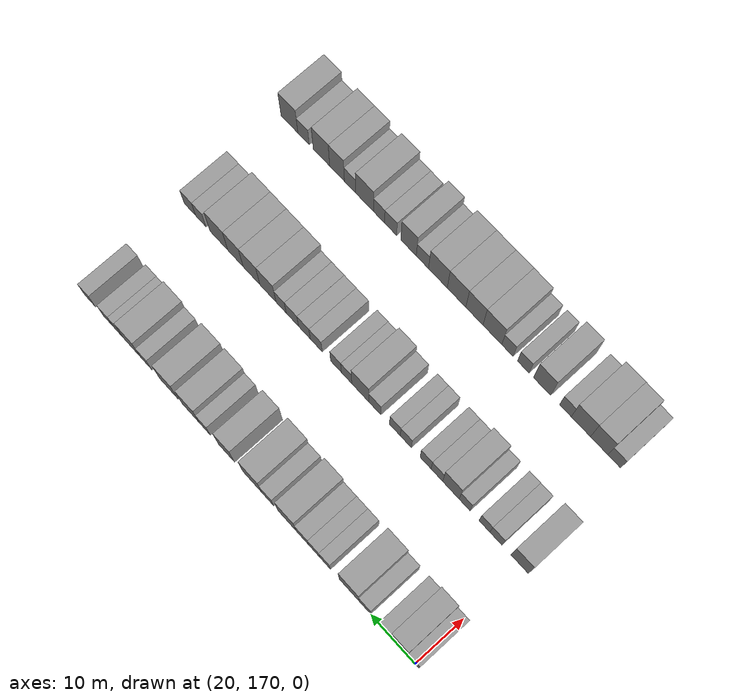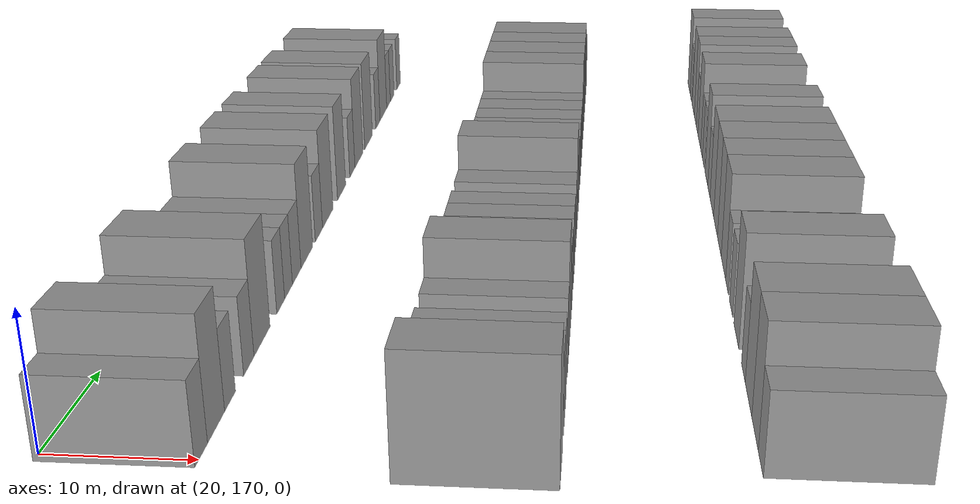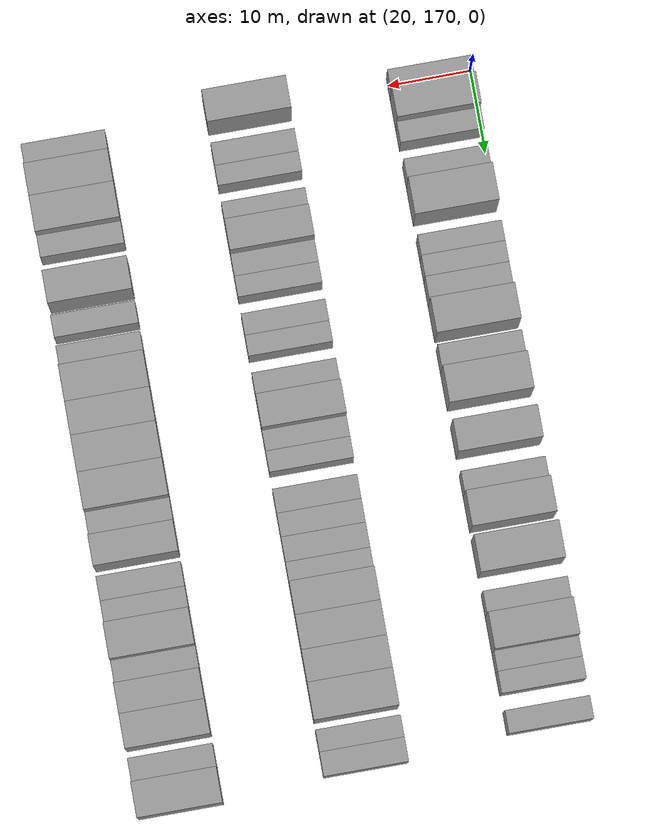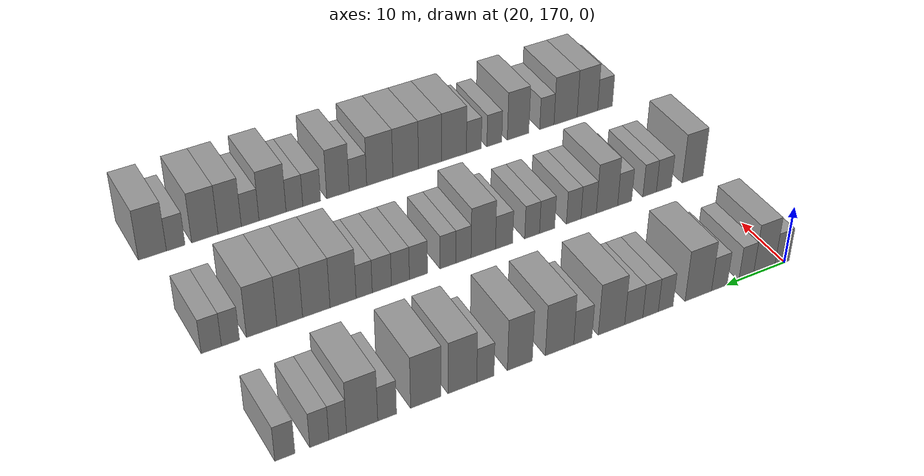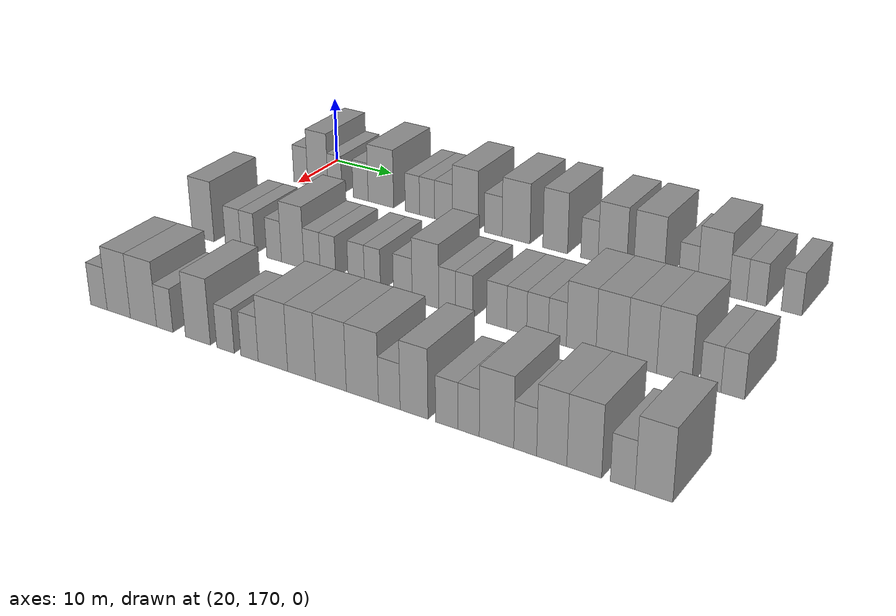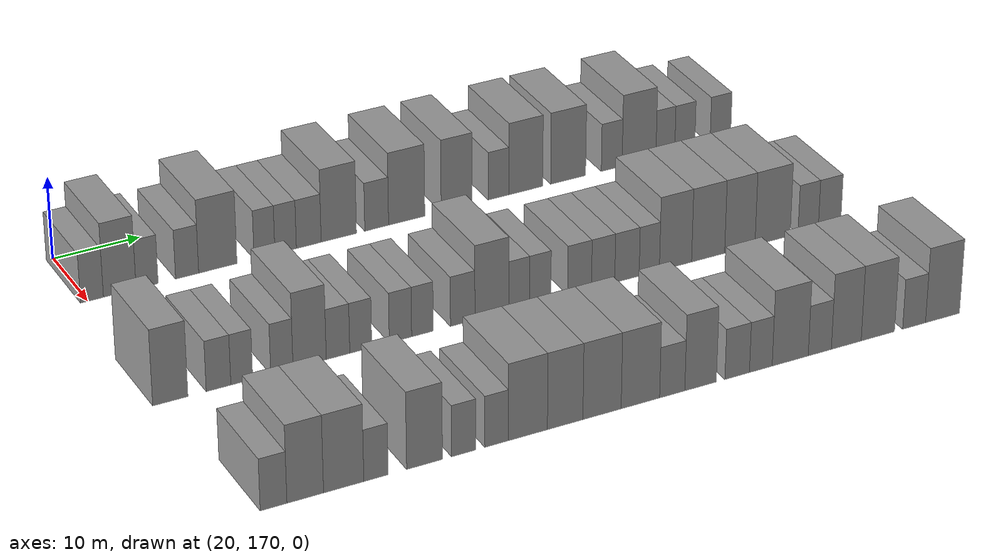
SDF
<sdf version="1.6">
 <world name="default">
  <model name="building_102">
   <static>1</static>
   <pose>25.0000 170.4860 0 0.000000 0.000000 0.000000</pose>
   <link name="link">
    <pose>0 0 3.00 0 0 0</pose>
    <collision name="collision"><geometry><box><size>10.0000 2.5908 6.0000</size></box></geometry></collision>
    <visual name="visual">
     <cast_shadows>0</cast_shadows>
     <geometry><box><size>10.0000 2.5908 6.0000</size></box></geometry>
     <material>
      <script>
       <uri>model://grey_wall/materials/scripts</uri>
       <uri>model://grey_wall/materials/textures</uri>
       <name>vrc/grey_wall</name>
      </script>
     </material>
    </visual>
   </link>
  </model>
  <model name="building_103">
   <static>1</static>
   <pose>25.0000 173.6419 0 0.000000 0.000000 0.000000</pose>
   <link name="link">
    <pose>0 0 4.50 0 0 0</pose>
    <collision name="collision"><geometry><box><size>10.0000 3.7210 9.0000</size></box></geometry></collision>
    <visual name="visual">
     <cast_shadows>0</cast_shadows>
     <geometry><box><size>10.0000 3.7210 9.0000</size></box></geometry>
     <material>
      <script>
       <uri>model://grey_wall/materials/scripts</uri>
       <uri>model://grey_wall/materials/textures</uri>
       <name>vrc/grey_wall</name>
      </script>
     </material>
    </visual>
   </link>
  </model>
  <model name="building_104">
   <static>1</static>
   <pose>25.0000 176.7685 0 0.000000 0.000000 0.000000</pose>
   <link name="link">
    <pose>0 0 3.00 0 0 0</pose>
    <collision name="collision"><geometry><box><size>10.0000 2.5322 6.0000</size></box></geometry></collision>
    <visual name="visual">
     <cast_shadows>0</cast_shadows>
     <geometry><box><size>10.0000 2.5322 6.0000</size></box></geometry>
     <material>
      <script>
       <uri>model://grey_wall/materials/scripts</uri>
       <uri>model://grey_wall/materials/textures</uri>
       <name>vrc/grey_wall</name>
      </script>
     </material>
    </visual>
   </link>
  </model>
  <model name="building_105">
   <static>1</static>
   <pose>25.0000 181.3725 0 0.000000 0.000000 0.000000</pose>
   <link name="link">
    <pose>0 0 3.00 0 0 0</pose>
    <collision name="collision"><geometry><box><size>10.0000 2.6758 6.0000</size></box></geometry></collision>
    <visual name="visual">
     <cast_shadows>0</cast_shadows>
     <geometry><box><size>10.0000 2.6758 6.0000</size></box></geometry>
     <material>
      <script>
       <uri>model://grey_wall/materials/scripts</uri>
       <uri>model://grey_wall/materials/textures</uri>
       <name>vrc/grey_wall</name>
      </script>
     </material>
    </visual>
   </link>
  </model>
  <model name="building_106">
   <static>1</static>
   <pose>25.0000 184.9443 0 0.000000 0.000000 0.000000</pose>
   <link name="link">
    <pose>0 0 4.50 0 0 0</pose>
    <collision name="collision"><geometry><box><size>10.0000 4.4678 9.0000</size></box></geometry></collision>
    <visual name="visual">
     <cast_shadows>0</cast_shadows>
     <geometry><box><size>10.0000 4.4678 9.0000</size></box></geometry>
     <material>
      <script>
       <uri>model://grey_wall/materials/scripts</uri>
       <uri>model://grey_wall/materials/textures</uri>
       <name>vrc/grey_wall</name>
      </script>
     </material>
    </visual>
   </link>
  </model>
  <model name="building_107">
   <static>1</static>
   <pose>25.0000 190.4029 0 0.000000 0.000000 0.000000</pose>
   <link name="link">
    <pose>0 0 3.00 0 0 0</pose>
    <collision name="collision"><geometry><box><size>10.0000 2.4494 6.0000</size></box></geometry></collision>
    <visual name="visual">
     <cast_shadows>0</cast_shadows>
     <geometry><box><size>10.0000 2.4494 6.0000</size></box></geometry>
     <material>
      <script>
       <uri>model://grey_wall/materials/scripts</uri>
       <uri>model://grey_wall/materials/textures</uri>
       <name>vrc/grey_wall</name>
      </script>
     </material>
    </visual>
   </link>
  </model>
  <model name="building_108">
   <static>1</static>
   <pose>25.0000 192.8982 0 0.000000 0.000000 0.000000</pose>
   <link name="link">
    <pose>0 0 3.00 0 0 0</pose>
    <collision name="collision"><geometry><box><size>10.0000 2.5413 6.0000</size></box></geometry></collision>
    <visual name="visual">
     <cast_shadows>0</cast_shadows>
     <geometry><box><size>10.0000 2.5413 6.0000</size></box></geometry>
     <material>
      <script>
       <uri>model://grey_wall/materials/scripts</uri>
       <uri>model://grey_wall/materials/textures</uri>
       <name>vrc/grey_wall</name>
      </script>
     </material>
    </visual>
   </link>
  </model>
  <model name="building_109">
   <static>1</static>
   <pose>25.0000 195.6448 0 0.000000 0.000000 0.000000</pose>
   <link name="link">
    <pose>0 0 3.00 0 0 0</pose>
    <collision name="collision"><geometry><box><size>10.0000 2.9519 6.0000</size></box></geometry></collision>
    <visual name="visual">
     <cast_shadows>0</cast_shadows>
     <geometry><box><size>10.0000 2.9519 6.0000</size></box></geometry>
     <material>
      <script>
       <uri>model://grey_wall/materials/scripts</uri>
       <uri>model://grey_wall/materials/textures</uri>
       <name>vrc/grey_wall</name>
      </script>
     </material>
    </visual>
   </link>
  </model>
  <model name="building_110">
   <static>1</static>
   <pose>25.0000 199.2382 0 0.000000 0.000000 0.000000</pose>
   <link name="link">
    <pose>0 0 4.50 0 0 0</pose>
    <collision name="collision"><geometry><box><size>10.0000 4.2349 9.0000</size></box></geometry></collision>
    <visual name="visual">
     <cast_shadows>0</cast_shadows>
     <geometry><box><size>10.0000 4.2349 9.0000</size></box></geometry>
     <material>
      <script>
       <uri>model://grey_wall/materials/scripts</uri>
       <uri>model://grey_wall/materials/textures</uri>
       <name>vrc/grey_wall</name>
      </script>
     </material>
    </visual>
   </link>
  </model>
  <model name="building_111">
   <static>1</static>
   <pose>25.0000 203.7957 0 0.000000 0.000000 0.000000</pose>
   <link name="link">
    <pose>0 0 3.00 0 0 0</pose>
    <collision name="collision"><geometry><box><size>10.0000 2.8800 6.0000</size></box></geometry></collision>
    <visual name="visual">
     <cast_shadows>0</cast_shadows>
     <geometry><box><size>10.0000 2.8800 6.0000</size></box></geometry>
     <material>
      <script>
       <uri>model://grey_wall/materials/scripts</uri>
       <uri>model://grey_wall/materials/textures</uri>
       <name>vrc/grey_wall</name>
      </script>
     </material>
    </visual>
   </link>
  </model>
  <model name="building_112">
   <static>1</static>
   <pose>25.0000 207.4443 0 0.000000 0.000000 0.000000</pose>
   <link name="link">
    <pose>0 0 4.50 0 0 0</pose>
    <collision name="collision"><geometry><box><size>10.0000 4.4173 9.0000</size></box></geometry></collision>
    <visual name="visual">
     <cast_shadows>0</cast_shadows>
     <geometry><box><size>10.0000 4.4173 9.0000</size></box></geometry>
     <material>
      <script>
       <uri>model://grey_wall/materials/scripts</uri>
       <uri>model://grey_wall/materials/textures</uri>
       <name>vrc/grey_wall</name>
      </script>
     </material>
    </visual>
   </link>
  </model>
  <model name="building_113">
   <static>1</static>
   <pose>25.0000 213.5589 0 0.000000 0.000000 0.000000</pose>
   <link name="link">
    <pose>0 0 4.50 0 0 0</pose>
    <collision name="collision"><geometry><box><size>10.0000 3.8119 9.0000</size></box></geometry></collision>
    <visual name="visual">
     <cast_shadows>0</cast_shadows>
     <geometry><box><size>10.0000 3.8119 9.0000</size></box></geometry>
     <material>
      <script>
       <uri>model://grey_wall/materials/scripts</uri>
       <uri>model://grey_wall/materials/textures</uri>
       <name>vrc/grey_wall</name>
      </script>
     </material>
    </visual>
   </link>
  </model>
  <model name="building_114">
   <static>1</static>
   <pose>25.0000 218.7580 0 0.000000 0.000000 0.000000</pose>
   <link name="link">
    <pose>0 0 3.00 0 0 0</pose>
    <collision name="collision"><geometry><box><size>10.0000 2.5863 6.0000</size></box></geometry></collision>
    <visual name="visual">
     <cast_shadows>0</cast_shadows>
     <geometry><box><size>10.0000 2.5863 6.0000</size></box></geometry>
     <material>
      <script>
       <uri>model://grey_wall/materials/scripts</uri>
       <uri>model://grey_wall/materials/textures</uri>
       <name>vrc/grey_wall</name>
      </script>
     </material>
    </visual>
   </link>
  </model>
  <model name="building_115">
   <static>1</static>
   <pose>25.0000 222.1692 0 0.000000 0.000000 0.000000</pose>
   <link name="link">
    <pose>0 0 4.50 0 0 0</pose>
    <collision name="collision"><geometry><box><size>10.0000 4.2362 9.0000</size></box></geometry></collision>
    <visual name="visual">
     <cast_shadows>0</cast_shadows>
     <geometry><box><size>10.0000 4.2362 9.0000</size></box></geometry>
     <material>
      <script>
       <uri>model://grey_wall/materials/scripts</uri>
       <uri>model://grey_wall/materials/textures</uri>
       <name>vrc/grey_wall</name>
      </script>
     </material>
    </visual>
   </link>
  </model>
  <model name="building_116">
   <static>1</static>
   <pose>25.0000 227.5014 0 0.000000 0.000000 0.000000</pose>
   <link name="link">
    <pose>0 0 4.50 0 0 0</pose>
    <collision name="collision"><geometry><box><size>10.0000 4.4281 9.0000</size></box></geometry></collision>
    <visual name="visual">
     <cast_shadows>0</cast_shadows>
     <geometry><box><size>10.0000 4.4281 9.0000</size></box></geometry>
     <material>
      <script>
       <uri>model://grey_wall/materials/scripts</uri>
       <uri>model://grey_wall/materials/textures</uri>
       <name>vrc/grey_wall</name>
      </script>
     </material>
    </visual>
   </link>
  </model>
  <model name="building_117">
   <static>1</static>
   <pose>25.0000 233.0473 0 0.000000 0.000000 0.000000</pose>
   <link name="link">
    <pose>0 0 3.00 0 0 0</pose>
    <collision name="collision"><geometry><box><size>10.0000 2.6637 6.0000</size></box></geometry></collision>
    <visual name="visual">
     <cast_shadows>0</cast_shadows>
     <geometry><box><size>10.0000 2.6637 6.0000</size></box></geometry>
     <material>
      <script>
       <uri>model://grey_wall/materials/scripts</uri>
       <uri>model://grey_wall/materials/textures</uri>
       <name>vrc/grey_wall</name>
      </script>
     </material>
    </visual>
   </link>
  </model>
  <model name="building_118">
   <static>1</static>
   <pose>25.0000 236.5592 0 0.000000 0.000000 0.000000</pose>
   <link name="link">
    <pose>0 0 4.50 0 0 0</pose>
    <collision name="collision"><geometry><box><size>10.0000 4.3601 9.0000</size></box></geometry></collision>
    <visual name="visual">
     <cast_shadows>0</cast_shadows>
     <geometry><box><size>10.0000 4.3601 9.0000</size></box></geometry>
     <material>
      <script>
       <uri>model://grey_wall/materials/scripts</uri>
       <uri>model://grey_wall/materials/textures</uri>
       <name>vrc/grey_wall</name>
      </script>
     </material>
    </visual>
   </link>
  </model>
  <model name="building_119">
   <static>1</static>
   <pose>25.0000 239.9588 0 0.000000 0.000000 0.000000</pose>
   <link name="link">
    <pose>0 0 3.00 0 0 0</pose>
    <collision name="collision"><geometry><box><size>10.0000 2.4390 6.0000</size></box></geometry></collision>
    <visual name="visual">
     <cast_shadows>0</cast_shadows>
     <geometry><box><size>10.0000 2.4390 6.0000</size></box></geometry>
     <material>
      <script>
       <uri>model://grey_wall/materials/scripts</uri>
       <uri>model://grey_wall/materials/textures</uri>
       <name>vrc/grey_wall</name>
      </script>
     </material>
    </visual>
   </link>
  </model>
  <model name="building_120">
   <static>1</static>
   <pose>25.0000 242.4833 0 0.000000 0.000000 0.000000</pose>
   <link name="link">
    <pose>0 0 3.00 0 0 0</pose>
    <collision name="collision"><geometry><box><size>10.0000 2.6099 6.0000</size></box></geometry></collision>
    <visual name="visual">
     <cast_shadows>0</cast_shadows>
     <geometry><box><size>10.0000 2.6099 6.0000</size></box></geometry>
     <material>
      <script>
       <uri>model://grey_wall/materials/scripts</uri>
       <uri>model://grey_wall/materials/textures</uri>
       <name>vrc/grey_wall</name>
      </script>
     </material>
    </visual>
   </link>
  </model>
  <model name="building_121">
   <static>1</static>
   <pose>25.0000 247.1419 0 0.000000 0.000000 0.000000</pose>
   <link name="link">
    <pose>0 0 3.00 0 0 0</pose>
    <collision name="collision"><geometry><box><size>10.0000 2.7074 6.0000</size></box></geometry></collision>
    <visual name="visual">
     <cast_shadows>0</cast_shadows>
     <geometry><box><size>10.0000 2.7074 6.0000</size></box></geometry>
     <material>
      <script>
       <uri>model://grey_wall/materials/scripts</uri>
       <uri>model://grey_wall/materials/textures</uri>
       <name>vrc/grey_wall</name>
      </script>
     </material>
    </visual>
   </link>
  </model>
  <model name="building_234">
   <static>1</static>
   <pose>47.0000 170.2331 0 0.000000 0.000000 0.000000</pose>
   <link name="link">
    <pose>0 0 4.50 0 0 0</pose>
    <collision name="collision"><geometry><box><size>10.0000 3.8517 9.0000</size></box></geometry></collision>
    <visual name="visual">
     <cast_shadows>0</cast_shadows>
     <geometry><box><size>10.0000 3.8517 9.0000</size></box></geometry>
     <material>
      <script>
       <uri>model://grey_wall/materials/scripts</uri>
       <uri>model://grey_wall/materials/textures</uri>
       <name>vrc/grey_wall</name>
      </script>
     </material>
    </visual>
   </link>
  </model>
  <model name="building_235">
   <static>1</static>
   <pose>47.0000 175.5202 0 0.000000 0.000000 0.000000</pose>
   <link name="link">
    <pose>0 0 3.00 0 0 0</pose>
    <collision name="collision"><geometry><box><size>10.0000 2.7224 6.0000</size></box></geometry></collision>
    <visual name="visual">
     <cast_shadows>0</cast_shadows>
     <geometry><box><size>10.0000 2.7224 6.0000</size></box></geometry>
     <material>
      <script>
       <uri>model://grey_wall/materials/scripts</uri>
       <uri>model://grey_wall/materials/textures</uri>
       <name>vrc/grey_wall</name>
      </script>
     </material>
    </visual>
   </link>
  </model>
  <model name="building_236">
   <static>1</static>
   <pose>47.0000 178.0982 0 0.000000 0.000000 0.000000</pose>
   <link name="link">
    <pose>0 0 3.00 0 0 0</pose>
    <collision name="collision"><geometry><box><size>10.0000 2.4335 6.0000</size></box></geometry></collision>
    <visual name="visual">
     <cast_shadows>0</cast_shadows>
     <geometry><box><size>10.0000 2.4335 6.0000</size></box></geometry>
     <material>
      <script>
       <uri>model://grey_wall/materials/scripts</uri>
       <uri>model://grey_wall/materials/textures</uri>
       <name>vrc/grey_wall</name>
      </script>
     </material>
    </visual>
   </link>
  </model>
  <model name="building_237">
   <static>1</static>
   <pose>47.0000 182.5622 0 0.000000 0.000000 0.000000</pose>
   <link name="link">
    <pose>0 0 3.00 0 0 0</pose>
    <collision name="collision"><geometry><box><size>10.0000 2.4946 6.0000</size></box></geometry></collision>
    <visual name="visual">
     <cast_shadows>0</cast_shadows>
     <geometry><box><size>10.0000 2.4946 6.0000</size></box></geometry>
     <material>
      <script>
       <uri>model://grey_wall/materials/scripts</uri>
       <uri>model://grey_wall/materials/textures</uri>
       <name>vrc/grey_wall</name>
      </script>
     </material>
    </visual>
   </link>
  </model>
  <model name="building_238">
   <static>1</static>
   <pose>47.0000 185.6844 0 0.000000 0.000000 0.000000</pose>
   <link name="link">
    <pose>0 0 4.50 0 0 0</pose>
    <collision name="collision"><geometry><box><size>10.0000 3.7497 9.0000</size></box></geometry></collision>
    <visual name="visual">
     <cast_shadows>0</cast_shadows>
     <geometry><box><size>10.0000 3.7497 9.0000</size></box></geometry>
     <material>
      <script>
       <uri>model://grey_wall/materials/scripts</uri>
       <uri>model://grey_wall/materials/textures</uri>
       <name>vrc/grey_wall</name>
      </script>
     </material>
    </visual>
   </link>
  </model>
  <model name="building_239">
   <static>1</static>
   <pose>47.0000 188.8957 0 0.000000 0.000000 0.000000</pose>
   <link name="link">
    <pose>0 0 3.00 0 0 0</pose>
    <collision name="collision"><geometry><box><size>10.0000 2.6728 6.0000</size></box></geometry></collision>
    <visual name="visual">
     <cast_shadows>0</cast_shadows>
     <geometry><box><size>10.0000 2.6728 6.0000</size></box></geometry>
     <material>
      <script>
       <uri>model://grey_wall/materials/scripts</uri>
       <uri>model://grey_wall/materials/textures</uri>
       <name>vrc/grey_wall</name>
      </script>
     </material>
    </visual>
   </link>
  </model>
  <model name="building_240">
   <static>1</static>
   <pose>47.0000 191.4880 0 0.000000 0.000000 0.000000</pose>
   <link name="link">
    <pose>0 0 3.00 0 0 0</pose>
    <collision name="collision"><geometry><box><size>10.0000 2.5119 6.0000</size></box></geometry></collision>
    <visual name="visual">
     <cast_shadows>0</cast_shadows>
     <geometry><box><size>10.0000 2.5119 6.0000</size></box></geometry>
     <material>
      <script>
       <uri>model://grey_wall/materials/scripts</uri>
       <uri>model://grey_wall/materials/textures</uri>
       <name>vrc/grey_wall</name>
      </script>
     </material>
    </visual>
   </link>
  </model>
  <model name="building_241">
   <static>1</static>
   <pose>47.0000 196.0348 0 0.000000 0.000000 0.000000</pose>
   <link name="link">
    <pose>0 0 3.00 0 0 0</pose>
    <collision name="collision"><geometry><box><size>10.0000 2.5816 6.0000</size></box></geometry></collision>
    <visual name="visual">
     <cast_shadows>0</cast_shadows>
     <geometry><box><size>10.0000 2.5816 6.0000</size></box></geometry>
     <material>
      <script>
       <uri>model://grey_wall/materials/scripts</uri>
       <uri>model://grey_wall/materials/textures</uri>
       <name>vrc/grey_wall</name>
      </script>
     </material>
    </visual>
   </link>
  </model>
  <model name="building_242">
   <static>1</static>
   <pose>47.0000 198.5786 0 0.000000 0.000000 0.000000</pose>
   <link name="link">
    <pose>0 0 3.00 0 0 0</pose>
    <collision name="collision"><geometry><box><size>10.0000 2.5060 6.0000</size></box></geometry></collision>
    <visual name="visual">
     <cast_shadows>0</cast_shadows>
     <geometry><box><size>10.0000 2.5060 6.0000</size></box></geometry>
     <material>
      <script>
       <uri>model://grey_wall/materials/scripts</uri>
       <uri>model://grey_wall/materials/textures</uri>
       <name>vrc/grey_wall</name>
      </script>
     </material>
    </visual>
   </link>
  </model>
  <model name="building_243">
   <static>1</static>
   <pose>47.0000 203.2638 0 0.000000 0.000000 0.000000</pose>
   <link name="link">
    <pose>0 0 3.00 0 0 0</pose>
    <collision name="collision"><geometry><box><size>10.0000 2.8644 6.0000</size></box></geometry></collision>
    <visual name="visual">
     <cast_shadows>0</cast_shadows>
     <geometry><box><size>10.0000 2.8644 6.0000</size></box></geometry>
     <material>
      <script>
       <uri>model://grey_wall/materials/scripts</uri>
       <uri>model://grey_wall/materials/textures</uri>
       <name>vrc/grey_wall</name>
      </script>
     </material>
    </visual>
   </link>
  </model>
  <model name="building_244">
   <static>1</static>
   <pose>47.0000 206.6940 0 0.000000 0.000000 0.000000</pose>
   <link name="link">
    <pose>0 0 4.50 0 0 0</pose>
    <collision name="collision"><geometry><box><size>10.0000 3.9961 9.0000</size></box></geometry></collision>
    <visual name="visual">
     <cast_shadows>0</cast_shadows>
     <geometry><box><size>10.0000 3.9961 9.0000</size></box></geometry>
     <material>
      <script>
       <uri>model://grey_wall/materials/scripts</uri>
       <uri>model://grey_wall/materials/textures</uri>
       <name>vrc/grey_wall</name>
      </script>
     </material>
    </visual>
   </link>
  </model>
  <model name="building_245">
   <static>1</static>
   <pose>47.0000 209.9259 0 0.000000 0.000000 0.000000</pose>
   <link name="link">
    <pose>0 0 3.00 0 0 0</pose>
    <collision name="collision"><geometry><box><size>10.0000 2.4676 6.0000</size></box></geometry></collision>
    <visual name="visual">
     <cast_shadows>0</cast_shadows>
     <geometry><box><size>10.0000 2.4676 6.0000</size></box></geometry>
     <material>
      <script>
       <uri>model://grey_wall/materials/scripts</uri>
       <uri>model://grey_wall/materials/textures</uri>
       <name>vrc/grey_wall</name>
      </script>
     </material>
    </visual>
   </link>
  </model>
  <model name="building_246">
   <static>1</static>
   <pose>47.0000 212.4250 0 0.000000 0.000000 0.000000</pose>
   <link name="link">
    <pose>0 0 3.00 0 0 0</pose>
    <collision name="collision"><geometry><box><size>10.0000 2.5306 6.0000</size></box></geometry></collision>
    <visual name="visual">
     <cast_shadows>0</cast_shadows>
     <geometry><box><size>10.0000 2.5306 6.0000</size></box></geometry>
     <material>
      <script>
       <uri>model://grey_wall/materials/scripts</uri>
       <uri>model://grey_wall/materials/textures</uri>
       <name>vrc/grey_wall</name>
      </script>
     </material>
    </visual>
   </link>
  </model>
  <model name="building_247">
   <static>1</static>
   <pose>47.0000 217.1273 0 0.000000 0.000000 0.000000</pose>
   <link name="link">
    <pose>0 0 3.00 0 0 0</pose>
    <collision name="collision"><geometry><box><size>10.0000 2.8742 6.0000</size></box></geometry></collision>
    <visual name="visual">
     <cast_shadows>0</cast_shadows>
     <geometry><box><size>10.0000 2.8742 6.0000</size></box></geometry>
     <material>
      <script>
       <uri>model://grey_wall/materials/scripts</uri>
       <uri>model://grey_wall/materials/textures</uri>
       <name>vrc/grey_wall</name>
      </script>
     </material>
    </visual>
   </link>
  </model>
  <model name="building_248">
   <static>1</static>
   <pose>47.0000 219.9723 0 0.000000 0.000000 0.000000</pose>
   <link name="link">
    <pose>0 0 3.00 0 0 0</pose>
    <collision name="collision"><geometry><box><size>10.0000 2.8158 6.0000</size></box></geometry></collision>
    <visual name="visual">
     <cast_shadows>0</cast_shadows>
     <geometry><box><size>10.0000 2.8158 6.0000</size></box></geometry>
     <material>
      <script>
       <uri>model://grey_wall/materials/scripts</uri>
       <uri>model://grey_wall/materials/textures</uri>
       <name>vrc/grey_wall</name>
      </script>
     </material>
    </visual>
   </link>
  </model>
  <model name="building_249">
   <static>1</static>
   <pose>47.0000 222.8673 0 0.000000 0.000000 0.000000</pose>
   <link name="link">
    <pose>0 0 3.00 0 0 0</pose>
    <collision name="collision"><geometry><box><size>10.0000 2.9740 6.0000</size></box></geometry></collision>
    <visual name="visual">
     <cast_shadows>0</cast_shadows>
     <geometry><box><size>10.0000 2.9740 6.0000</size></box></geometry>
     <material>
      <script>
       <uri>model://grey_wall/materials/scripts</uri>
       <uri>model://grey_wall/materials/textures</uri>
       <name>vrc/grey_wall</name>
      </script>
     </material>
    </visual>
   </link>
  </model>
  <model name="building_250">
   <static>1</static>
   <pose>47.0000 225.5910 0 0.000000 0.000000 0.000000</pose>
   <link name="link">
    <pose>0 0 3.00 0 0 0</pose>
    <collision name="collision"><geometry><box><size>10.0000 2.4736 6.0000</size></box></geometry></collision>
    <visual name="visual">
     <cast_shadows>0</cast_shadows>
     <geometry><box><size>10.0000 2.4736 6.0000</size></box></geometry>
     <material>
      <script>
       <uri>model://grey_wall/materials/scripts</uri>
       <uri>model://grey_wall/materials/textures</uri>
       <name>vrc/grey_wall</name>
      </script>
     </material>
    </visual>
   </link>
  </model>
  <model name="building_251">
   <static>1</static>
   <pose>47.0000 228.8112 0 0.000000 0.000000 0.000000</pose>
   <link name="link">
    <pose>0 0 4.50 0 0 0</pose>
    <collision name="collision"><geometry><box><size>10.0000 3.9668 9.0000</size></box></geometry></collision>
    <visual name="visual">
     <cast_shadows>0</cast_shadows>
     <geometry><box><size>10.0000 3.9668 9.0000</size></box></geometry>
     <material>
      <script>
       <uri>model://grey_wall/materials/scripts</uri>
       <uri>model://grey_wall/materials/textures</uri>
       <name>vrc/grey_wall</name>
      </script>
     </material>
    </visual>
   </link>
  </model>
  <model name="building_252">
   <static>1</static>
   <pose>47.0000 232.8479 0 0.000000 0.000000 0.000000</pose>
   <link name="link">
    <pose>0 0 4.50 0 0 0</pose>
    <collision name="collision"><geometry><box><size>10.0000 4.1067 9.0000</size></box></geometry></collision>
    <visual name="visual">
     <cast_shadows>0</cast_shadows>
     <geometry><box><size>10.0000 4.1067 9.0000</size></box></geometry>
     <material>
      <script>
       <uri>model://grey_wall/materials/scripts</uri>
       <uri>model://grey_wall/materials/textures</uri>
       <name>vrc/grey_wall</name>
      </script>
     </material>
    </visual>
   </link>
  </model>
  <model name="building_253">
   <static>1</static>
   <pose>47.0000 236.8028 0 0.000000 0.000000 0.000000</pose>
   <link name="link">
    <pose>0 0 4.50 0 0 0</pose>
    <collision name="collision"><geometry><box><size>10.0000 3.8030 9.0000</size></box></geometry></collision>
    <visual name="visual">
     <cast_shadows>0</cast_shadows>
     <geometry><box><size>10.0000 3.8030 9.0000</size></box></geometry>
     <material>
      <script>
       <uri>model://grey_wall/materials/scripts</uri>
       <uri>model://grey_wall/materials/textures</uri>
       <name>vrc/grey_wall</name>
      </script>
     </material>
    </visual>
   </link>
  </model>
  <model name="building_254">
   <static>1</static>
   <pose>47.0000 240.9207 0 0.000000 0.000000 0.000000</pose>
   <link name="link">
    <pose>0 0 4.50 0 0 0</pose>
    <collision name="collision"><geometry><box><size>10.0000 4.4328 9.0000</size></box></geometry></collision>
    <visual name="visual">
     <cast_shadows>0</cast_shadows>
     <geometry><box><size>10.0000 4.4328 9.0000</size></box></geometry>
     <material>
      <script>
       <uri>model://grey_wall/materials/scripts</uri>
       <uri>model://grey_wall/materials/textures</uri>
       <name>vrc/grey_wall</name>
      </script>
     </material>
    </visual>
   </link>
  </model>
  <model name="building_255">
   <static>1</static>
   <pose>47.0000 245.4338 0 0.000000 0.000000 0.000000</pose>
   <link name="link">
    <pose>0 0 3.00 0 0 0</pose>
    <collision name="collision"><geometry><box><size>10.0000 2.5933 6.0000</size></box></geometry></collision>
    <visual name="visual">
     <cast_shadows>0</cast_shadows>
     <geometry><box><size>10.0000 2.5933 6.0000</size></box></geometry>
     <material>
      <script>
       <uri>model://grey_wall/materials/scripts</uri>
       <uri>model://grey_wall/materials/textures</uri>
       <name>vrc/grey_wall</name>
      </script>
     </material>
    </visual>
   </link>
  </model>
  <model name="building_256">
   <static>1</static>
   <pose>47.0000 248.1706 0 0.000000 0.000000 0.000000</pose>
   <link name="link">
    <pose>0 0 3.00 0 0 0</pose>
    <collision name="collision"><geometry><box><size>10.0000 2.8803 6.0000</size></box></geometry></collision>
    <visual name="visual">
     <cast_shadows>0</cast_shadows>
     <geometry><box><size>10.0000 2.8803 6.0000</size></box></geometry>
     <material>
      <script>
       <uri>model://grey_wall/materials/scripts</uri>
       <uri>model://grey_wall/materials/textures</uri>
       <name>vrc/grey_wall</name>
      </script>
     </material>
    </visual>
   </link>
  </model>
  <model name="building_364">
   <static>1</static>
   <pose>69.0000 171.7938 0 0.000000 0.000000 0.000000</pose>
   <link name="link">
    <pose>0 0 3.00 0 0 0</pose>
    <collision name="collision"><geometry><box><size>10.0000 2.8259 6.0000</size></box></geometry></collision>
    <visual name="visual">
     <cast_shadows>0</cast_shadows>
     <geometry><box><size>10.0000 2.8259 6.0000</size></box></geometry>
     <material>
      <script>
       <uri>model://grey_wall/materials/scripts</uri>
       <uri>model://grey_wall/materials/textures</uri>
       <name>vrc/grey_wall</name>
      </script>
     </material>
    </visual>
   </link>
  </model>
  <model name="building_365">
   <static>1</static>
   <pose>69.0000 175.1544 0 0.000000 0.000000 0.000000</pose>
   <link name="link">
    <pose>0 0 4.50 0 0 0</pose>
    <collision name="collision"><geometry><box><size>10.0000 3.8952 9.0000</size></box></geometry></collision>
    <visual name="visual">
     <cast_shadows>0</cast_shadows>
     <geometry><box><size>10.0000 3.8952 9.0000</size></box></geometry>
     <material>
      <script>
       <uri>model://grey_wall/materials/scripts</uri>
       <uri>model://grey_wall/materials/textures</uri>
       <name>vrc/grey_wall</name>
      </script>
     </material>
    </visual>
   </link>
  </model>
  <model name="building_366">
   <static>1</static>
   <pose>69.0000 179.2623 0 0.000000 0.000000 0.000000</pose>
   <link name="link">
    <pose>0 0 4.50 0 0 0</pose>
    <collision name="collision"><geometry><box><size>10.0000 4.3206 9.0000</size></box></geometry></collision>
    <visual name="visual">
     <cast_shadows>0</cast_shadows>
     <geometry><box><size>10.0000 4.3206 9.0000</size></box></geometry>
     <material>
      <script>
       <uri>model://grey_wall/materials/scripts</uri>
       <uri>model://grey_wall/materials/textures</uri>
       <name>vrc/grey_wall</name>
      </script>
     </material>
    </visual>
   </link>
  </model>
  <model name="building_367">
   <static>1</static>
   <pose>69.0000 182.7438 0 0.000000 0.000000 0.000000</pose>
   <link name="link">
    <pose>0 0 3.00 0 0 0</pose>
    <collision name="collision"><geometry><box><size>10.0000 2.6424 6.0000</size></box></geometry></collision>
    <visual name="visual">
     <cast_shadows>0</cast_shadows>
     <geometry><box><size>10.0000 2.6424 6.0000</size></box></geometry>
     <material>
      <script>
       <uri>model://grey_wall/materials/scripts</uri>
       <uri>model://grey_wall/materials/textures</uri>
       <name>vrc/grey_wall</name>
      </script>
     </material>
    </visual>
   </link>
  </model>
  <model name="building_368">
   <static>1</static>
   <pose>69.0000 188.0264 0 0.000000 0.000000 0.000000</pose>
   <link name="link">
    <pose>0 0 4.50 0 0 0</pose>
    <collision name="collision"><geometry><box><size>10.0000 3.9229 9.0000</size></box></geometry></collision>
    <visual name="visual">
     <cast_shadows>0</cast_shadows>
     <geometry><box><size>10.0000 3.9229 9.0000</size></box></geometry>
     <material>
      <script>
       <uri>model://grey_wall/materials/scripts</uri>
       <uri>model://grey_wall/materials/textures</uri>
       <name>vrc/grey_wall</name>
      </script>
     </material>
    </visual>
   </link>
  </model>
  <model name="building_369">
   <static>1</static>
   <pose>69.0000 192.3292 0 0.000000 0.000000 0.000000</pose>
   <link name="link">
    <pose>0 0 3.00 0 0 0</pose>
    <collision name="collision"><geometry><box><size>10.0000 2.6826 6.0000</size></box></geometry></collision>
    <visual name="visual">
     <cast_shadows>0</cast_shadows>
     <geometry><box><size>10.0000 2.6826 6.0000</size></box></geometry>
     <material>
      <script>
       <uri>model://grey_wall/materials/scripts</uri>
       <uri>model://grey_wall/materials/textures</uri>
       <name>vrc/grey_wall</name>
      </script>
     </material>
    </visual>
   </link>
  </model>
  <model name="building_370">
   <static>1</static>
   <pose>69.0000 195.9879 0 0.000000 0.000000 0.000000</pose>
   <link name="link">
    <pose>0 0 3.00 0 0 0</pose>
    <collision name="collision"><geometry><box><size>10.0000 2.6347 6.0000</size></box></geometry></collision>
    <visual name="visual">
     <cast_shadows>0</cast_shadows>
     <geometry><box><size>10.0000 2.6347 6.0000</size></box></geometry>
     <material>
      <script>
       <uri>model://grey_wall/materials/scripts</uri>
       <uri>model://grey_wall/materials/textures</uri>
       <name>vrc/grey_wall</name>
      </script>
     </material>
    </visual>
   </link>
  </model>
  <model name="building_371">
   <static>1</static>
   <pose>69.0000 199.4867 0 0.000000 0.000000 0.000000</pose>
   <link name="link">
    <pose>0 0 4.50 0 0 0</pose>
    <collision name="collision"><geometry><box><size>10.0000 4.3629 9.0000</size></box></geometry></collision>
    <visual name="visual">
     <cast_shadows>0</cast_shadows>
     <geometry><box><size>10.0000 4.3629 9.0000</size></box></geometry>
     <material>
      <script>
       <uri>model://grey_wall/materials/scripts</uri>
       <uri>model://grey_wall/materials/textures</uri>
       <name>vrc/grey_wall</name>
      </script>
     </material>
    </visual>
   </link>
  </model>
  <model name="building_372">
   <static>1</static>
   <pose>69.0000 203.6783 0 0.000000 0.000000 0.000000</pose>
   <link name="link">
    <pose>0 0 4.50 0 0 0</pose>
    <collision name="collision"><geometry><box><size>10.0000 4.0203 9.0000</size></box></geometry></collision>
    <visual name="visual">
     <cast_shadows>0</cast_shadows>
     <geometry><box><size>10.0000 4.0203 9.0000</size></box></geometry>
     <material>
      <script>
       <uri>model://grey_wall/materials/scripts</uri>
       <uri>model://grey_wall/materials/textures</uri>
       <name>vrc/grey_wall</name>
      </script>
     </material>
    </visual>
   </link>
  </model>
  <model name="building_373">
   <static>1</static>
   <pose>69.0000 207.8735 0 0.000000 0.000000 0.000000</pose>
   <link name="link">
    <pose>0 0 4.50 0 0 0</pose>
    <collision name="collision"><geometry><box><size>10.0000 4.3702 9.0000</size></box></geometry></collision>
    <visual name="visual">
     <cast_shadows>0</cast_shadows>
     <geometry><box><size>10.0000 4.3702 9.0000</size></box></geometry>
     <material>
      <script>
       <uri>model://grey_wall/materials/scripts</uri>
       <uri>model://grey_wall/materials/textures</uri>
       <name>vrc/grey_wall</name>
      </script>
     </material>
    </visual>
   </link>
  </model>
  <model name="building_374">
   <static>1</static>
   <pose>69.0000 212.2755 0 0.000000 0.000000 0.000000</pose>
   <link name="link">
    <pose>0 0 4.50 0 0 0</pose>
    <collision name="collision"><geometry><box><size>10.0000 4.4339 9.0000</size></box></geometry></collision>
    <visual name="visual">
     <cast_shadows>0</cast_shadows>
     <geometry><box><size>10.0000 4.4339 9.0000</size></box></geometry>
     <material>
      <script>
       <uri>model://grey_wall/materials/scripts</uri>
       <uri>model://grey_wall/materials/textures</uri>
       <name>vrc/grey_wall</name>
      </script>
     </material>
    </visual>
   </link>
  </model>
  <model name="building_375">
   <static>1</static>
   <pose>69.0000 215.9579 0 0.000000 0.000000 0.000000</pose>
   <link name="link">
    <pose>0 0 3.00 0 0 0</pose>
    <collision name="collision"><geometry><box><size>10.0000 2.9308 6.0000</size></box></geometry></collision>
    <visual name="visual">
     <cast_shadows>0</cast_shadows>
     <geometry><box><size>10.0000 2.9308 6.0000</size></box></geometry>
     <material>
      <script>
       <uri>model://grey_wall/materials/scripts</uri>
       <uri>model://grey_wall/materials/textures</uri>
       <name>vrc/grey_wall</name>
      </script>
     </material>
    </visual>
   </link>
  </model>
  <model name="building_376">
   <static>1</static>
   <pose>69.0000 219.2712 0 0.000000 0.000000 0.000000</pose>
   <link name="link">
    <pose>0 0 4.50 0 0 0</pose>
    <collision name="collision"><geometry><box><size>10.0000 3.6960 9.0000</size></box></geometry></collision>
    <visual name="visual">
     <cast_shadows>0</cast_shadows>
     <geometry><box><size>10.0000 3.6960 9.0000</size></box></geometry>
     <material>
      <script>
       <uri>model://grey_wall/materials/scripts</uri>
       <uri>model://grey_wall/materials/textures</uri>
       <name>vrc/grey_wall</name>
      </script>
     </material>
    </visual>
   </link>
  </model>
  <model name="building_377">
   <static>1</static>
   <pose>69.0000 223.5706 0 0.000000 0.000000 0.000000</pose>
   <link name="link">
    <pose>0 0 3.00 0 0 0</pose>
    <collision name="collision"><geometry><box><size>10.0000 2.9027 6.0000</size></box></geometry></collision>
    <visual name="visual">
     <cast_shadows>0</cast_shadows>
     <geometry><box><size>10.0000 2.9027 6.0000</size></box></geometry>
     <material>
      <script>
       <uri>model://grey_wall/materials/scripts</uri>
       <uri>model://grey_wall/materials/textures</uri>
       <name>vrc/grey_wall</name>
      </script>
     </material>
    </visual>
   </link>
  </model>
  <model name="building_378">
   <static>1</static>
   <pose>69.0000 226.3730 0 0.000000 0.000000 0.000000</pose>
   <link name="link">
    <pose>0 0 3.00 0 0 0</pose>
    <collision name="collision"><geometry><box><size>10.0000 2.7022 6.0000</size></box></geometry></collision>
    <visual name="visual">
     <cast_shadows>0</cast_shadows>
     <geometry><box><size>10.0000 2.7022 6.0000</size></box></geometry>
     <material>
      <script>
       <uri>model://grey_wall/materials/scripts</uri>
       <uri>model://grey_wall/materials/textures</uri>
       <name>vrc/grey_wall</name>
      </script>
     </material>
    </visual>
   </link>
  </model>
  <model name="building_379">
   <static>1</static>
   <pose>69.0000 229.8843 0 0.000000 0.000000 0.000000</pose>
   <link name="link">
    <pose>0 0 4.50 0 0 0</pose>
    <collision name="collision"><geometry><box><size>10.0000 4.3204 9.0000</size></box></geometry></collision>
    <visual name="visual">
     <cast_shadows>0</cast_shadows>
     <geometry><box><size>10.0000 4.3204 9.0000</size></box></geometry>
     <material>
      <script>
       <uri>model://grey_wall/materials/scripts</uri>
       <uri>model://grey_wall/materials/textures</uri>
       <name>vrc/grey_wall</name>
      </script>
     </material>
    </visual>
   </link>
  </model>
  <model name="building_380">
   <static>1</static>
   <pose>69.0000 233.4387 0 0.000000 0.000000 0.000000</pose>
   <link name="link">
    <pose>0 0 3.00 0 0 0</pose>
    <collision name="collision"><geometry><box><size>10.0000 2.7884 6.0000</size></box></geometry></collision>
    <visual name="visual">
     <cast_shadows>0</cast_shadows>
     <geometry><box><size>10.0000 2.7884 6.0000</size></box></geometry>
     <material>
      <script>
       <uri>model://grey_wall/materials/scripts</uri>
       <uri>model://grey_wall/materials/textures</uri>
       <name>vrc/grey_wall</name>
      </script>
     </material>
    </visual>
   </link>
  </model>
  <model name="building_381">
   <static>1</static>
   <pose>69.0000 236.6457 0 0.000000 0.000000 0.000000</pose>
   <link name="link">
    <pose>0 0 4.50 0 0 0</pose>
    <collision name="collision"><geometry><box><size>10.0000 3.6256 9.0000</size></box></geometry></collision>
    <visual name="visual">
     <cast_shadows>0</cast_shadows>
     <geometry><box><size>10.0000 3.6256 9.0000</size></box></geometry>
     <material>
      <script>
       <uri>model://grey_wall/materials/scripts</uri>
       <uri>model://grey_wall/materials/textures</uri>
       <name>vrc/grey_wall</name>
      </script>
     </material>
    </visual>
   </link>
  </model>
  <model name="building_382">
   <static>1</static>
   <pose>69.0000 240.4987 0 0.000000 0.000000 0.000000</pose>
   <link name="link">
    <pose>0 0 4.50 0 0 0</pose>
    <collision name="collision"><geometry><box><size>10.0000 4.0805 9.0000</size></box></geometry></collision>
    <visual name="visual">
     <cast_shadows>0</cast_shadows>
     <geometry><box><size>10.0000 4.0805 9.0000</size></box></geometry>
     <material>
      <script>
       <uri>model://grey_wall/materials/scripts</uri>
       <uri>model://grey_wall/materials/textures</uri>
       <name>vrc/grey_wall</name>
      </script>
     </material>
    </visual>
   </link>
  </model>
  <model name="building_383">
   <static>1</static>
   <pose>69.0000 244.9538 0 0.000000 0.000000 0.000000</pose>
   <link name="link">
    <pose>0 0 3.00 0 0 0</pose>
    <collision name="collision"><geometry><box><size>10.0000 2.8296 6.0000</size></box></geometry></collision>
    <visual name="visual">
     <cast_shadows>0</cast_shadows>
     <geometry><box><size>10.0000 2.8296 6.0000</size></box></geometry>
     <material>
      <script>
       <uri>model://grey_wall/materials/scripts</uri>
       <uri>model://grey_wall/materials/textures</uri>
       <name>vrc/grey_wall</name>
      </script>
     </material>
    </visual>
   </link>
  </model>
  <model name="building_384">
   <static>1</static>
   <pose>69.0000 248.4792 0 0.000000 0.000000 0.000000</pose>
   <link name="link">
    <pose>0 0 4.50 0 0 0</pose>
    <collision name="collision"><geometry><box><size>10.0000 4.2211 9.0000</size></box></geometry></collision>
    <visual name="visual">
     <cast_shadows>0</cast_shadows>
     <geometry><box><size>10.0000 4.2211 9.0000</size></box></geometry>
     <material>
      <script>
       <uri>model://grey_wall/materials/scripts</uri>
       <uri>model://grey_wall/materials/textures</uri>
       <name>vrc/grey_wall</name>
      </script>
     </material>
    </visual>
   </link>
  </model>
 </world>
</sdf>
